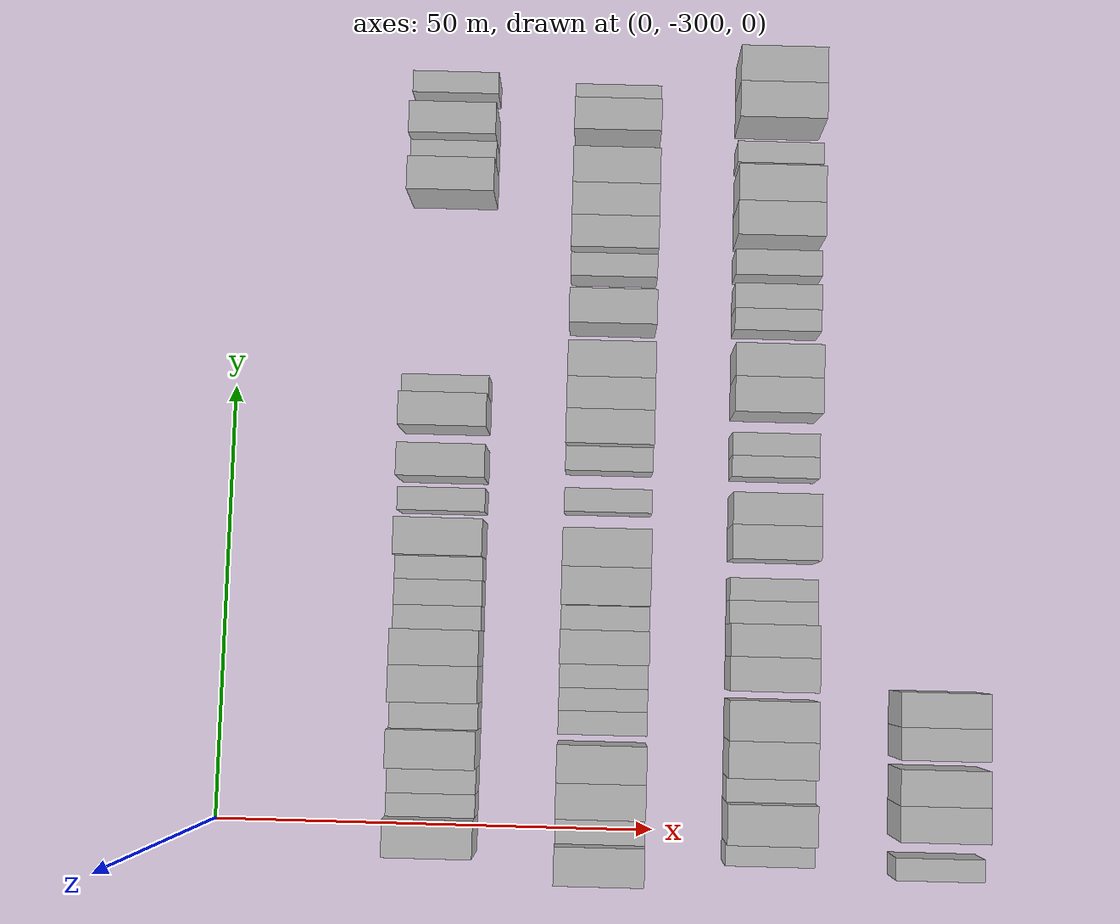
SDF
<sdf version="1.6">
 <world name="default">
  <model name="building_13">
   <static>1</static>
   <pose>25.0000 -300.7905 0 0.000000 0.000000 0.000000</pose>
   <link name="link">
    <pose>0 0 4.50 0 0 0</pose>
    <collision name="collision"><geometry><box><size>10.0000 4.1984 9.0000</size></box></geometry></collision>
    <visual name="visual">
     <cast_shadows>0</cast_shadows>
     <geometry><box><size>10.0000 4.1984 9.0000</size></box></geometry>
     <material>
      <script>
       <uri>model://HANNAS_wall/materials/scripts</uri>
       <uri>model://HANNAS_wall/materials/textures</uri>
       <name>vrc/HANNAS_wall</name>
      </script>
     </material>
    </visual>
   </link>
  </model>
  <model name="building_14">
   <static>1</static>
   <pose>25.0000 -297.3987 0 0.000000 0.000000 0.000000</pose>
   <link name="link">
    <pose>0 0 3.00 0 0 0</pose>
    <collision name="collision"><geometry><box><size>10.0000 2.5852 6.0000</size></box></geometry></collision>
    <visual name="visual">
     <cast_shadows>0</cast_shadows>
     <geometry><box><size>10.0000 2.5852 6.0000</size></box></geometry>
     <material>
      <script>
       <uri>model://HANNAS_wall/materials/scripts</uri>
       <uri>model://HANNAS_wall/materials/textures</uri>
       <name>vrc/HANNAS_wall</name>
      </script>
     </material>
    </visual>
   </link>
  </model>
  <model name="building_15">
   <static>1</static>
   <pose>25.0000 -294.6609 0 0.000000 0.000000 0.000000</pose>
   <link name="link">
    <pose>0 0 3.00 0 0 0</pose>
    <collision name="collision"><geometry><box><size>10.0000 2.8902 6.0000</size></box></geometry></collision>
    <visual name="visual">
     <cast_shadows>0</cast_shadows>
     <geometry><box><size>10.0000 2.8902 6.0000</size></box></geometry>
     <material>
      <script>
       <uri>model://HANNAS_wall/materials/scripts</uri>
       <uri>model://HANNAS_wall/materials/textures</uri>
       <name>vrc/HANNAS_wall</name>
      </script>
     </material>
    </visual>
   </link>
  </model>
  <model name="building_16">
   <static>1</static>
   <pose>25.0000 -291.0888 0 0.000000 0.000000 0.000000</pose>
   <link name="link">
    <pose>0 0 4.50 0 0 0</pose>
    <collision name="collision"><geometry><box><size>10.0000 4.2540 9.0000</size></box></geometry></collision>
    <visual name="visual">
     <cast_shadows>0</cast_shadows>
     <geometry><box><size>10.0000 4.2540 9.0000</size></box></geometry>
     <material>
      <script>
       <uri>model://HANNAS_wall/materials/scripts</uri>
       <uri>model://HANNAS_wall/materials/textures</uri>
       <name>vrc/HANNAS_wall</name>
      </script>
     </material>
    </visual>
   </link>
  </model>
  <model name="building_17">
   <static>1</static>
   <pose>25.0000 -287.4622 0 0.000000 0.000000 0.000000</pose>
   <link name="link">
    <pose>0 0 3.00 0 0 0</pose>
    <collision name="collision"><geometry><box><size>10.0000 2.9994 6.0000</size></box></geometry></collision>
    <visual name="visual">
     <cast_shadows>0</cast_shadows>
     <geometry><box><size>10.0000 2.9994 6.0000</size></box></geometry>
     <material>
      <script>
       <uri>model://HANNAS_wall/materials/scripts</uri>
       <uri>model://HANNAS_wall/materials/textures</uri>
       <name>vrc/HANNAS_wall</name>
      </script>
     </material>
    </visual>
   </link>
  </model>
  <model name="building_18">
   <static>1</static>
   <pose>25.0000 -283.9113 0 0.000000 0.000000 0.000000</pose>
   <link name="link">
    <pose>0 0 4.50 0 0 0</pose>
    <collision name="collision"><geometry><box><size>10.0000 4.1024 9.0000</size></box></geometry></collision>
    <visual name="visual">
     <cast_shadows>0</cast_shadows>
     <geometry><box><size>10.0000 4.1024 9.0000</size></box></geometry>
     <material>
      <script>
       <uri>model://HANNAS_wall/materials/scripts</uri>
       <uri>model://HANNAS_wall/materials/textures</uri>
       <name>vrc/HANNAS_wall</name>
      </script>
     </material>
    </visual>
   </link>
  </model>
  <model name="building_19">
   <static>1</static>
   <pose>25.0000 -279.8644 0 0.000000 0.000000 0.000000</pose>
   <link name="link">
    <pose>0 0 4.50 0 0 0</pose>
    <collision name="collision"><geometry><box><size>10.0000 3.9914 9.0000</size></box></geometry></collision>
    <visual name="visual">
     <cast_shadows>0</cast_shadows>
     <geometry><box><size>10.0000 3.9914 9.0000</size></box></geometry>
     <material>
      <script>
       <uri>model://HANNAS_wall/materials/scripts</uri>
       <uri>model://HANNAS_wall/materials/textures</uri>
       <name>vrc/HANNAS_wall</name>
      </script>
     </material>
    </visual>
   </link>
  </model>
  <model name="building_20">
   <static>1</static>
   <pose>25.0000 -276.5070 0 0.000000 0.000000 0.000000</pose>
   <link name="link">
    <pose>0 0 3.00 0 0 0</pose>
    <collision name="collision"><geometry><box><size>10.0000 2.7232 6.0000</size></box></geometry></collision>
    <visual name="visual">
     <cast_shadows>0</cast_shadows>
     <geometry><box><size>10.0000 2.7232 6.0000</size></box></geometry>
     <material>
      <script>
       <uri>model://HANNAS_wall/materials/scripts</uri>
       <uri>model://HANNAS_wall/materials/textures</uri>
       <name>vrc/HANNAS_wall</name>
      </script>
     </material>
    </visual>
   </link>
  </model>
  <model name="building_21">
   <static>1</static>
   <pose>25.0000 -273.6886 0 0.000000 0.000000 0.000000</pose>
   <link name="link">
    <pose>0 0 3.00 0 0 0</pose>
    <collision name="collision"><geometry><box><size>10.0000 2.9136 6.0000</size></box></geometry></collision>
    <visual name="visual">
     <cast_shadows>0</cast_shadows>
     <geometry><box><size>10.0000 2.9136 6.0000</size></box></geometry>
     <material>
      <script>
       <uri>model://HANNAS_wall/materials/scripts</uri>
       <uri>model://HANNAS_wall/materials/textures</uri>
       <name>vrc/HANNAS_wall</name>
      </script>
     </material>
    </visual>
   </link>
  </model>
  <model name="building_22">
   <static>1</static>
   <pose>25.0000 -270.9212 0 0.000000 0.000000 0.000000</pose>
   <link name="link">
    <pose>0 0 3.00 0 0 0</pose>
    <collision name="collision"><geometry><box><size>10.0000 2.6211 6.0000</size></box></geometry></collision>
    <visual name="visual">
     <cast_shadows>0</cast_shadows>
     <geometry><box><size>10.0000 2.6211 6.0000</size></box></geometry>
     <material>
      <script>
       <uri>model://HANNAS_wall/materials/scripts</uri>
       <uri>model://HANNAS_wall/materials/textures</uri>
       <name>vrc/HANNAS_wall</name>
      </script>
     </material>
    </visual>
   </link>
  </model>
  <model name="building_23">
   <static>1</static>
   <pose>25.0000 -267.5183 0 0.000000 0.000000 0.000000</pose>
   <link name="link">
    <pose>0 0 4.50 0 0 0</pose>
    <collision name="collision"><geometry><box><size>10.0000 4.1848 9.0000</size></box></geometry></collision>
    <visual name="visual">
     <cast_shadows>0</cast_shadows>
     <geometry><box><size>10.0000 4.1848 9.0000</size></box></geometry>
     <material>
      <script>
       <uri>model://HANNAS_wall/materials/scripts</uri>
       <uri>model://HANNAS_wall/materials/textures</uri>
       <name>vrc/HANNAS_wall</name>
      </script>
     </material>
    </visual>
   </link>
  </model>
  <model name="building_24">
   <static>1</static>
   <pose>25.0000 -263.1053 0 0.000000 0.000000 0.000000</pose>
   <link name="link">
    <pose>0 0 3.00 0 0 0</pose>
    <collision name="collision"><geometry><box><size>10.0000 2.6412 6.0000</size></box></geometry></collision>
    <visual name="visual">
     <cast_shadows>0</cast_shadows>
     <geometry><box><size>10.0000 2.6412 6.0000</size></box></geometry>
     <material>
      <script>
       <uri>model://HANNAS_wall/materials/scripts</uri>
       <uri>model://HANNAS_wall/materials/textures</uri>
       <name>vrc/HANNAS_wall</name>
      </script>
     </material>
    </visual>
   </link>
  </model>
  <model name="building_25">
   <static>1</static>
   <pose>25.0000 -258.9148 0 0.000000 0.000000 0.000000</pose>
   <link name="link">
    <pose>0 0 4.50 0 0 0</pose>
    <collision name="collision"><geometry><box><size>10.0000 3.7397 9.0000</size></box></geometry></collision>
    <visual name="visual">
     <cast_shadows>0</cast_shadows>
     <geometry><box><size>10.0000 3.7397 9.0000</size></box></geometry>
     <material>
      <script>
       <uri>model://HANNAS_wall/materials/scripts</uri>
       <uri>model://HANNAS_wall/materials/textures</uri>
       <name>vrc/HANNAS_wall</name>
      </script>
     </material>
    </visual>
   </link>
  </model>
  <model name="building_26">
   <static>1</static>
   <pose>25.0000 -253.1585 0 0.000000 0.000000 0.000000</pose>
   <link name="link">
    <pose>0 0 4.50 0 0 0</pose>
    <collision name="collision"><geometry><box><size>10.0000 3.7730 9.0000</size></box></geometry></collision>
    <visual name="visual">
     <cast_shadows>0</cast_shadows>
     <geometry><box><size>10.0000 3.7730 9.0000</size></box></geometry>
     <material>
      <script>
       <uri>model://HANNAS_wall/materials/scripts</uri>
       <uri>model://HANNAS_wall/materials/textures</uri>
       <name>vrc/HANNAS_wall</name>
      </script>
     </material>
    </visual>
   </link>
  </model>
  <model name="building_27">
   <static>1</static>
   <pose>25.0000 -250.0536 0 0.000000 0.000000 0.000000</pose>
   <link name="link">
    <pose>0 0 3.00 0 0 0</pose>
    <collision name="collision"><geometry><box><size>10.0000 2.4368 6.0000</size></box></geometry></collision>
    <visual name="visual">
     <cast_shadows>0</cast_shadows>
     <geometry><box><size>10.0000 2.4368 6.0000</size></box></geometry>
     <material>
      <script>
       <uri>model://HANNAS_wall/materials/scripts</uri>
       <uri>model://HANNAS_wall/materials/textures</uri>
       <name>vrc/HANNAS_wall</name>
      </script>
     </material>
    </visual>
   </link>
  </model>
  <model name="building_28">
   <static>1</static>
   <pose>25.0000 -226.0626 0 0.000000 0.000000 0.000000</pose>
   <link name="link">
    <pose>0 0 4.50 0 0 0</pose>
    <collision name="collision"><geometry><box><size>10.0000 3.8484 9.0000</size></box></geometry></collision>
    <visual name="visual">
     <cast_shadows>0</cast_shadows>
     <geometry><box><size>10.0000 3.8484 9.0000</size></box></geometry>
     <material>
      <script>
       <uri>model://HANNAS_wall/materials/scripts</uri>
       <uri>model://HANNAS_wall/materials/textures</uri>
       <name>vrc/HANNAS_wall</name>
      </script>
     </material>
    </visual>
   </link>
  </model>
  <model name="building_29">
   <static>1</static>
   <pose>25.0000 -222.7465 0 0.000000 0.000000 0.000000</pose>
   <link name="link">
    <pose>0 0 3.00 0 0 0</pose>
    <collision name="collision"><geometry><box><size>10.0000 2.7838 6.0000</size></box></geometry></collision>
    <visual name="visual">
     <cast_shadows>0</cast_shadows>
     <geometry><box><size>10.0000 2.7838 6.0000</size></box></geometry>
     <material>
      <script>
       <uri>model://HANNAS_wall/materials/scripts</uri>
       <uri>model://HANNAS_wall/materials/textures</uri>
       <name>vrc/HANNAS_wall</name>
      </script>
     </material>
    </visual>
   </link>
  </model>
  <model name="building_30">
   <static>1</static>
   <pose>25.0000 -219.5177 0 0.000000 0.000000 0.000000</pose>
   <link name="link">
    <pose>0 0 4.50 0 0 0</pose>
    <collision name="collision"><geometry><box><size>10.0000 3.6739 9.0000</size></box></geometry></collision>
    <visual name="visual">
     <cast_shadows>0</cast_shadows>
     <geometry><box><size>10.0000 3.6739 9.0000</size></box></geometry>
     <material>
      <script>
       <uri>model://HANNAS_wall/materials/scripts</uri>
       <uri>model://HANNAS_wall/materials/textures</uri>
       <name>vrc/HANNAS_wall</name>
      </script>
     </material>
    </visual>
   </link>
  </model>
  <model name="building_31">
   <static>1</static>
   <pose>25.0000 -214.4132 0 0.000000 0.000000 0.000000</pose>
   <link name="link">
    <pose>0 0 3.00 0 0 0</pose>
    <collision name="collision"><geometry><box><size>10.0000 2.5351 6.0000</size></box></geometry></collision>
    <visual name="visual">
     <cast_shadows>0</cast_shadows>
     <geometry><box><size>10.0000 2.5351 6.0000</size></box></geometry>
     <material>
      <script>
       <uri>model://HANNAS_wall/materials/scripts</uri>
       <uri>model://HANNAS_wall/materials/textures</uri>
       <name>vrc/HANNAS_wall</name>
      </script>
     </material>
    </visual>
   </link>
  </model>
  <model name="building_181">
   <static>1</static>
   <pose>44.0000 -303.3270 0 0.000000 0.000000 0.000000</pose>
   <link name="link">
    <pose>0 0 4.50 0 0 0</pose>
    <collision name="collision"><geometry><box><size>10.0000 4.2376 9.0000</size></box></geometry></collision>
    <visual name="visual">
     <cast_shadows>0</cast_shadows>
     <geometry><box><size>10.0000 4.2376 9.0000</size></box></geometry>
     <material>
      <script>
       <uri>model://HANNAS_wall/materials/scripts</uri>
       <uri>model://HANNAS_wall/materials/textures</uri>
       <name>vrc/HANNAS_wall</name>
      </script>
     </material>
    </visual>
   </link>
  </model>
  <model name="building_182">
   <static>1</static>
   <pose>44.0000 -299.7260 0 0.000000 0.000000 0.000000</pose>
   <link name="link">
    <pose>0 0 3.00 0 0 0</pose>
    <collision name="collision"><geometry><box><size>10.0000 2.9644 6.0000</size></box></geometry></collision>
    <visual name="visual">
     <cast_shadows>0</cast_shadows>
     <geometry><box><size>10.0000 2.9644 6.0000</size></box></geometry>
     <material>
      <script>
       <uri>model://HANNAS_wall/materials/scripts</uri>
       <uri>model://HANNAS_wall/materials/textures</uri>
       <name>vrc/HANNAS_wall</name>
      </script>
     </material>
    </visual>
   </link>
  </model>
  <model name="building_183">
   <static>1</static>
   <pose>44.0000 -296.2830 0 0.000000 0.000000 0.000000</pose>
   <link name="link">
    <pose>0 0 4.50 0 0 0</pose>
    <collision name="collision"><geometry><box><size>10.0000 3.9217 9.0000</size></box></geometry></collision>
    <visual name="visual">
     <cast_shadows>0</cast_shadows>
     <geometry><box><size>10.0000 3.9217 9.0000</size></box></geometry>
     <material>
      <script>
       <uri>model://HANNAS_wall/materials/scripts</uri>
       <uri>model://HANNAS_wall/materials/textures</uri>
       <name>vrc/HANNAS_wall</name>
      </script>
     </material>
    </visual>
   </link>
  </model>
  <model name="building_184">
   <static>1</static>
   <pose>44.0000 -292.2314 0 0.000000 0.000000 0.000000</pose>
   <link name="link">
    <pose>0 0 4.50 0 0 0</pose>
    <collision name="collision"><geometry><box><size>10.0000 4.1815 9.0000</size></box></geometry></collision>
    <visual name="visual">
     <cast_shadows>0</cast_shadows>
     <geometry><box><size>10.0000 4.1815 9.0000</size></box></geometry>
     <material>
      <script>
       <uri>model://HANNAS_wall/materials/scripts</uri>
       <uri>model://HANNAS_wall/materials/textures</uri>
       <name>vrc/HANNAS_wall</name>
      </script>
     </material>
    </visual>
   </link>
  </model>
  <model name="building_185">
   <static>1</static>
   <pose>44.0000 -287.8193 0 0.000000 0.000000 0.000000</pose>
   <link name="link">
    <pose>0 0 3.00 0 0 0</pose>
    <collision name="collision"><geometry><box><size>10.0000 2.6428 6.0000</size></box></geometry></collision>
    <visual name="visual">
     <cast_shadows>0</cast_shadows>
     <geometry><box><size>10.0000 2.6428 6.0000</size></box></geometry>
     <material>
      <script>
       <uri>model://HANNAS_wall/materials/scripts</uri>
       <uri>model://HANNAS_wall/materials/textures</uri>
       <name>vrc/HANNAS_wall</name>
      </script>
     </material>
    </visual>
   </link>
  </model>
  <model name="building_186">
   <static>1</static>
   <pose>44.0000 -285.2266 0 0.000000 0.000000 0.000000</pose>
   <link name="link">
    <pose>0 0 3.00 0 0 0</pose>
    <collision name="collision"><geometry><box><size>10.0000 2.5427 6.0000</size></box></geometry></collision>
    <visual name="visual">
     <cast_shadows>0</cast_shadows>
     <geometry><box><size>10.0000 2.5427 6.0000</size></box></geometry>
     <material>
      <script>
       <uri>model://HANNAS_wall/materials/scripts</uri>
       <uri>model://HANNAS_wall/materials/textures</uri>
       <name>vrc/HANNAS_wall</name>
      </script>
     </material>
    </visual>
   </link>
  </model>
  <model name="building_187">
   <static>1</static>
   <pose>44.0000 -282.6139 0 0.000000 0.000000 0.000000</pose>
   <link name="link">
    <pose>0 0 3.00 0 0 0</pose>
    <collision name="collision"><geometry><box><size>10.0000 2.6825 6.0000</size></box></geometry></collision>
    <visual name="visual">
     <cast_shadows>0</cast_shadows>
     <geometry><box><size>10.0000 2.6825 6.0000</size></box></geometry>
     <material>
      <script>
       <uri>model://HANNAS_wall/materials/scripts</uri>
       <uri>model://HANNAS_wall/materials/textures</uri>
       <name>vrc/HANNAS_wall</name>
      </script>
     </material>
    </visual>
   </link>
  </model>
  <model name="building_188">
   <static>1</static>
   <pose>44.0000 -279.3797 0 0.000000 0.000000 0.000000</pose>
   <link name="link">
    <pose>0 0 4.50 0 0 0</pose>
    <collision name="collision"><geometry><box><size>10.0000 3.7860 9.0000</size></box></geometry></collision>
    <visual name="visual">
     <cast_shadows>0</cast_shadows>
     <geometry><box><size>10.0000 3.7860 9.0000</size></box></geometry>
     <material>
      <script>
       <uri>model://HANNAS_wall/materials/scripts</uri>
       <uri>model://HANNAS_wall/materials/textures</uri>
       <name>vrc/HANNAS_wall</name>
      </script>
     </material>
    </visual>
   </link>
  </model>
  <model name="building_189">
   <static>1</static>
   <pose>44.0000 -276.0984 0 0.000000 0.000000 0.000000</pose>
   <link name="link">
    <pose>0 0 3.00 0 0 0</pose>
    <collision name="collision"><geometry><box><size>10.0000 2.7766 6.0000</size></box></geometry></collision>
    <visual name="visual">
     <cast_shadows>0</cast_shadows>
     <geometry><box><size>10.0000 2.7766 6.0000</size></box></geometry>
     <material>
      <script>
       <uri>model://HANNAS_wall/materials/scripts</uri>
       <uri>model://HANNAS_wall/materials/textures</uri>
       <name>vrc/HANNAS_wall</name>
      </script>
     </material>
    </visual>
   </link>
  </model>
  <model name="building_190">
   <static>1</static>
   <pose>44.0000 -272.5750 0 0.000000 0.000000 0.000000</pose>
   <link name="link">
    <pose>0 0 4.50 0 0 0</pose>
    <collision name="collision"><geometry><box><size>10.0000 4.2703 9.0000</size></box></geometry></collision>
    <visual name="visual">
     <cast_shadows>0</cast_shadows>
     <geometry><box><size>10.0000 4.2703 9.0000</size></box></geometry>
     <material>
      <script>
       <uri>model://HANNAS_wall/materials/scripts</uri>
       <uri>model://HANNAS_wall/materials/textures</uri>
       <name>vrc/HANNAS_wall</name>
      </script>
     </material>
    </visual>
   </link>
  </model>
  <model name="building_191">
   <static>1</static>
   <pose>44.0000 -268.2742 0 0.000000 0.000000 0.000000</pose>
   <link name="link">
    <pose>0 0 4.50 0 0 0</pose>
    <collision name="collision"><geometry><box><size>10.0000 4.3313 9.0000</size></box></geometry></collision>
    <visual name="visual">
     <cast_shadows>0</cast_shadows>
     <geometry><box><size>10.0000 4.3313 9.0000</size></box></geometry>
     <material>
      <script>
       <uri>model://HANNAS_wall/materials/scripts</uri>
       <uri>model://HANNAS_wall/materials/textures</uri>
       <name>vrc/HANNAS_wall</name>
      </script>
     </material>
    </visual>
   </link>
  </model>
  <model name="building_192">
   <static>1</static>
   <pose>44.0000 -262.7635 0 0.000000 0.000000 0.000000</pose>
   <link name="link">
    <pose>0 0 3.00 0 0 0</pose>
    <collision name="collision"><geometry><box><size>10.0000 2.6901 6.0000</size></box></geometry></collision>
    <visual name="visual">
     <cast_shadows>0</cast_shadows>
     <geometry><box><size>10.0000 2.6901 6.0000</size></box></geometry>
     <material>
      <script>
       <uri>model://HANNAS_wall/materials/scripts</uri>
       <uri>model://HANNAS_wall/materials/textures</uri>
       <name>vrc/HANNAS_wall</name>
      </script>
     </material>
    </visual>
   </link>
  </model>
  <model name="building_193">
   <static>1</static>
   <pose>44.0000 -258.0133 0 0.000000 0.000000 0.000000</pose>
   <link name="link">
    <pose>0 0 3.00 0 0 0</pose>
    <collision name="collision"><geometry><box><size>10.0000 2.8103 6.0000</size></box></geometry></collision>
    <visual name="visual">
     <cast_shadows>0</cast_shadows>
     <geometry><box><size>10.0000 2.8103 6.0000</size></box></geometry>
     <material>
      <script>
       <uri>model://HANNAS_wall/materials/scripts</uri>
       <uri>model://HANNAS_wall/materials/textures</uri>
       <name>vrc/HANNAS_wall</name>
      </script>
     </material>
    </visual>
   </link>
  </model>
  <model name="building_194">
   <static>1</static>
   <pose>44.0000 -254.6480 0 0.000000 0.000000 0.000000</pose>
   <link name="link">
    <pose>0 0 4.50 0 0 0</pose>
    <collision name="collision"><geometry><box><size>10.0000 3.9203 9.0000</size></box></geometry></collision>
    <visual name="visual">
     <cast_shadows>0</cast_shadows>
     <geometry><box><size>10.0000 3.9203 9.0000</size></box></geometry>
     <material>
      <script>
       <uri>model://HANNAS_wall/materials/scripts</uri>
       <uri>model://HANNAS_wall/materials/textures</uri>
       <name>vrc/HANNAS_wall</name>
      </script>
     </material>
    </visual>
   </link>
  </model>
  <model name="building_195">
   <static>1</static>
   <pose>44.0000 -250.8637 0 0.000000 0.000000 0.000000</pose>
   <link name="link">
    <pose>0 0 4.50 0 0 0</pose>
    <collision name="collision"><geometry><box><size>10.0000 3.6484 9.0000</size></box></geometry></collision>
    <visual name="visual">
     <cast_shadows>0</cast_shadows>
     <geometry><box><size>10.0000 3.6484 9.0000</size></box></geometry>
     <material>
      <script>
       <uri>model://HANNAS_wall/materials/scripts</uri>
       <uri>model://HANNAS_wall/materials/textures</uri>
       <name>vrc/HANNAS_wall</name>
      </script>
     </material>
    </visual>
   </link>
  </model>
  <model name="building_196">
   <static>1</static>
   <pose>44.0000 -246.9723 0 0.000000 0.000000 0.000000</pose>
   <link name="link">
    <pose>0 0 4.50 0 0 0</pose>
    <collision name="collision"><geometry><box><size>10.0000 4.1344 9.0000</size></box></geometry></collision>
    <visual name="visual">
     <cast_shadows>0</cast_shadows>
     <geometry><box><size>10.0000 4.1344 9.0000</size></box></geometry>
     <material>
      <script>
       <uri>model://HANNAS_wall/materials/scripts</uri>
       <uri>model://HANNAS_wall/materials/textures</uri>
       <name>vrc/HANNAS_wall</name>
      </script>
     </material>
    </visual>
   </link>
  </model>
  <model name="building_197">
   <static>1</static>
   <pose>44.0000 -240.9035 0 0.000000 0.000000 0.000000</pose>
   <link name="link">
    <pose>0 0 4.50 0 0 0</pose>
    <collision name="collision"><geometry><box><size>10.0000 4.0032 9.0000</size></box></geometry></collision>
    <visual name="visual">
     <cast_shadows>0</cast_shadows>
     <geometry><box><size>10.0000 4.0032 9.0000</size></box></geometry>
     <material>
      <script>
       <uri>model://HANNAS_wall/materials/scripts</uri>
       <uri>model://HANNAS_wall/materials/textures</uri>
       <name>vrc/HANNAS_wall</name>
      </script>
     </material>
    </visual>
   </link>
  </model>
  <model name="building_198">
   <static>1</static>
   <pose>44.0000 -235.5371 0 0.000000 0.000000 0.000000</pose>
   <link name="link">
    <pose>0 0 3.00 0 0 0</pose>
    <collision name="collision"><geometry><box><size>10.0000 2.7296 6.0000</size></box></geometry></collision>
    <visual name="visual">
     <cast_shadows>0</cast_shadows>
     <geometry><box><size>10.0000 2.7296 6.0000</size></box></geometry>
     <material>
      <script>
       <uri>model://HANNAS_wall/materials/scripts</uri>
       <uri>model://HANNAS_wall/materials/textures</uri>
       <name>vrc/HANNAS_wall</name>
      </script>
     </material>
    </visual>
   </link>
  </model>
  <model name="building_199">
   <static>1</static>
   <pose>44.0000 -232.3139 0 0.000000 0.000000 0.000000</pose>
   <link name="link">
    <pose>0 0 4.50 0 0 0</pose>
    <collision name="collision"><geometry><box><size>10.0000 3.7168 9.0000</size></box></geometry></collision>
    <visual name="visual">
     <cast_shadows>0</cast_shadows>
     <geometry><box><size>10.0000 3.7168 9.0000</size></box></geometry>
     <material>
      <script>
       <uri>model://HANNAS_wall/materials/scripts</uri>
       <uri>model://HANNAS_wall/materials/textures</uri>
       <name>vrc/HANNAS_wall</name>
      </script>
     </material>
    </visual>
   </link>
  </model>
  <model name="building_200">
   <static>1</static>
   <pose>44.0000 -228.5671 0 0.000000 0.000000 0.000000</pose>
   <link name="link">
    <pose>0 0 4.50 0 0 0</pose>
    <collision name="collision"><geometry><box><size>10.0000 3.7767 9.0000</size></box></geometry></collision>
    <visual name="visual">
     <cast_shadows>0</cast_shadows>
     <geometry><box><size>10.0000 3.7767 9.0000</size></box></geometry>
     <material>
      <script>
       <uri>model://HANNAS_wall/materials/scripts</uri>
       <uri>model://HANNAS_wall/materials/textures</uri>
       <name>vrc/HANNAS_wall</name>
      </script>
     </material>
    </visual>
   </link>
  </model>
  <model name="building_201">
   <static>1</static>
   <pose>44.0000 -224.5776 0 0.000000 0.000000 0.000000</pose>
   <link name="link">
    <pose>0 0 4.50 0 0 0</pose>
    <collision name="collision"><geometry><box><size>10.0000 4.2024 9.0000</size></box></geometry></collision>
    <visual name="visual">
     <cast_shadows>0</cast_shadows>
     <geometry><box><size>10.0000 4.2024 9.0000</size></box></geometry>
     <material>
      <script>
       <uri>model://HANNAS_wall/materials/scripts</uri>
       <uri>model://HANNAS_wall/materials/textures</uri>
       <name>vrc/HANNAS_wall</name>
      </script>
     </material>
    </visual>
   </link>
  </model>
  <model name="building_202">
   <static>1</static>
   <pose>44.0000 -218.6069 0 0.000000 0.000000 0.000000</pose>
   <link name="link">
    <pose>0 0 4.50 0 0 0</pose>
    <collision name="collision"><geometry><box><size>10.0000 3.7391 9.0000</size></box></geometry></collision>
    <visual name="visual">
     <cast_shadows>0</cast_shadows>
     <geometry><box><size>10.0000 3.7391 9.0000</size></box></geometry>
     <material>
      <script>
       <uri>model://HANNAS_wall/materials/scripts</uri>
       <uri>model://HANNAS_wall/materials/textures</uri>
       <name>vrc/HANNAS_wall</name>
      </script>
     </material>
    </visual>
   </link>
  </model>
  <model name="building_203">
   <static>1</static>
   <pose>44.0000 -215.4786 0 0.000000 0.000000 0.000000</pose>
   <link name="link">
    <pose>0 0 3.00 0 0 0</pose>
    <collision name="collision"><geometry><box><size>10.0000 2.5176 6.0000</size></box></geometry></collision>
    <visual name="visual">
     <cast_shadows>0</cast_shadows>
     <geometry><box><size>10.0000 2.5176 6.0000</size></box></geometry>
     <material>
      <script>
       <uri>model://HANNAS_wall/materials/scripts</uri>
       <uri>model://HANNAS_wall/materials/textures</uri>
       <name>vrc/HANNAS_wall</name>
      </script>
     </material>
    </visual>
   </link>
  </model>
  <model name="building_358">
   <static>1</static>
   <pose>63.0000 -301.8535 0 0.000000 0.000000 0.000000</pose>
   <link name="link">
    <pose>0 0 3.00 0 0 0</pose>
    <collision name="collision"><geometry><box><size>10.0000 2.5547 6.0000</size></box></geometry></collision>
    <visual name="visual">
     <cast_shadows>0</cast_shadows>
     <geometry><box><size>10.0000 2.5547 6.0000</size></box></geometry>
     <material>
      <script>
       <uri>model://HANNAS_wall/materials/scripts</uri>
       <uri>model://HANNAS_wall/materials/textures</uri>
       <name>vrc/HANNAS_wall</name>
      </script>
     </material>
    </visual>
   </link>
  </model>
  <model name="building_359">
   <static>1</static>
   <pose>63.0000 -298.3447 0 0.000000 0.000000 0.000000</pose>
   <link name="link">
    <pose>0 0 4.50 0 0 0</pose>
    <collision name="collision"><geometry><box><size>10.0000 4.4631 9.0000</size></box></geometry></collision>
    <visual name="visual">
     <cast_shadows>0</cast_shadows>
     <geometry><box><size>10.0000 4.4631 9.0000</size></box></geometry>
     <material>
      <script>
       <uri>model://HANNAS_wall/materials/scripts</uri>
       <uri>model://HANNAS_wall/materials/textures</uri>
       <name>vrc/HANNAS_wall</name>
      </script>
     </material>
    </visual>
   </link>
  </model>
  <model name="building_360">
   <static>1</static>
   <pose>63.0000 -294.7150 0 0.000000 0.000000 0.000000</pose>
   <link name="link">
    <pose>0 0 3.00 0 0 0</pose>
    <collision name="collision"><geometry><box><size>10.0000 2.7962 6.0000</size></box></geometry></collision>
    <visual name="visual">
     <cast_shadows>0</cast_shadows>
     <geometry><box><size>10.0000 2.7962 6.0000</size></box></geometry>
     <material>
      <script>
       <uri>model://HANNAS_wall/materials/scripts</uri>
       <uri>model://HANNAS_wall/materials/textures</uri>
       <name>vrc/HANNAS_wall</name>
      </script>
     </material>
    </visual>
   </link>
  </model>
  <model name="building_361">
   <static>1</static>
   <pose>63.0000 -291.2730 0 0.000000 0.000000 0.000000</pose>
   <link name="link">
    <pose>0 0 4.50 0 0 0</pose>
    <collision name="collision"><geometry><box><size>10.0000 4.0878 9.0000</size></box></geometry></collision>
    <visual name="visual">
     <cast_shadows>0</cast_shadows>
     <geometry><box><size>10.0000 4.0878 9.0000</size></box></geometry>
     <material>
      <script>
       <uri>model://HANNAS_wall/materials/scripts</uri>
       <uri>model://HANNAS_wall/materials/textures</uri>
       <name>vrc/HANNAS_wall</name>
      </script>
     </material>
    </visual>
   </link>
  </model>
  <model name="building_362">
   <static>1</static>
   <pose>63.0000 -286.9962 0 0.000000 0.000000 0.000000</pose>
   <link name="link">
    <pose>0 0 4.50 0 0 0</pose>
    <collision name="collision"><geometry><box><size>10.0000 4.4658 9.0000</size></box></geometry></collision>
    <visual name="visual">
     <cast_shadows>0</cast_shadows>
     <geometry><box><size>10.0000 4.4658 9.0000</size></box></geometry>
     <material>
      <script>
       <uri>model://HANNAS_wall/materials/scripts</uri>
       <uri>model://HANNAS_wall/materials/textures</uri>
       <name>vrc/HANNAS_wall</name>
      </script>
     </material>
    </visual>
   </link>
  </model>
  <model name="building_363">
   <static>1</static>
   <pose>63.0000 -281.8577 0 0.000000 0.000000 0.000000</pose>
   <link name="link">
    <pose>0 0 4.50 0 0 0</pose>
    <collision name="collision"><geometry><box><size>10.0000 3.8113 9.0000</size></box></geometry></collision>
    <visual name="visual">
     <cast_shadows>0</cast_shadows>
     <geometry><box><size>10.0000 3.8113 9.0000</size></box></geometry>
     <material>
      <script>
       <uri>model://HANNAS_wall/materials/scripts</uri>
       <uri>model://HANNAS_wall/materials/textures</uri>
       <name>vrc/HANNAS_wall</name>
      </script>
     </material>
    </visual>
   </link>
  </model>
  <model name="building_364">
   <static>1</static>
   <pose>63.0000 -278.1359 0 0.000000 0.000000 0.000000</pose>
   <link name="link">
    <pose>0 0 4.50 0 0 0</pose>
    <collision name="collision"><geometry><box><size>10.0000 3.6322 9.0000</size></box></geometry></collision>
    <visual name="visual">
     <cast_shadows>0</cast_shadows>
     <geometry><box><size>10.0000 3.6322 9.0000</size></box></geometry>
     <material>
      <script>
       <uri>model://HANNAS_wall/materials/scripts</uri>
       <uri>model://HANNAS_wall/materials/textures</uri>
       <name>vrc/HANNAS_wall</name>
      </script>
     </material>
    </visual>
   </link>
  </model>
  <model name="building_365">
   <static>1</static>
   <pose>63.0000 -274.9928 0 0.000000 0.000000 0.000000</pose>
   <link name="link">
    <pose>0 0 3.00 0 0 0</pose>
    <collision name="collision"><geometry><box><size>10.0000 2.6540 6.0000</size></box></geometry></collision>
    <visual name="visual">
     <cast_shadows>0</cast_shadows>
     <geometry><box><size>10.0000 2.6540 6.0000</size></box></geometry>
     <material>
      <script>
       <uri>model://HANNAS_wall/materials/scripts</uri>
       <uri>model://HANNAS_wall/materials/textures</uri>
       <name>vrc/HANNAS_wall</name>
      </script>
     </material>
    </visual>
   </link>
  </model>
  <model name="building_366">
   <static>1</static>
   <pose>63.0000 -272.3990 0 0.000000 0.000000 0.000000</pose>
   <link name="link">
    <pose>0 0 3.00 0 0 0</pose>
    <collision name="collision"><geometry><box><size>10.0000 2.5335 6.0000</size></box></geometry></collision>
    <visual name="visual">
     <cast_shadows>0</cast_shadows>
     <geometry><box><size>10.0000 2.5335 6.0000</size></box></geometry>
     <material>
      <script>
       <uri>model://HANNAS_wall/materials/scripts</uri>
       <uri>model://HANNAS_wall/materials/textures</uri>
       <name>vrc/HANNAS_wall</name>
      </script>
     </material>
    </visual>
   </link>
  </model>
  <model name="building_367">
   <static>1</static>
   <pose>63.0000 -267.2105 0 0.000000 0.000000 0.000000</pose>
   <link name="link">
    <pose>0 0 4.50 0 0 0</pose>
    <collision name="collision"><geometry><box><size>10.0000 3.8435 9.0000</size></box></geometry></collision>
    <visual name="visual">
     <cast_shadows>0</cast_shadows>
     <geometry><box><size>10.0000 3.8435 9.0000</size></box></geometry>
     <material>
      <script>
       <uri>model://HANNAS_wall/materials/scripts</uri>
       <uri>model://HANNAS_wall/materials/textures</uri>
       <name>vrc/HANNAS_wall</name>
      </script>
     </material>
    </visual>
   </link>
  </model>
  <model name="building_368">
   <static>1</static>
   <pose>63.0000 -263.4780 0 0.000000 0.000000 0.000000</pose>
   <link name="link">
    <pose>0 0 4.50 0 0 0</pose>
    <collision name="collision"><geometry><box><size>10.0000 3.6215 9.0000</size></box></geometry></collision>
    <visual name="visual">
     <cast_shadows>0</cast_shadows>
     <geometry><box><size>10.0000 3.6215 9.0000</size></box></geometry>
     <material>
      <script>
       <uri>model://HANNAS_wall/materials/scripts</uri>
       <uri>model://HANNAS_wall/materials/textures</uri>
       <name>vrc/HANNAS_wall</name>
      </script>
     </material>
    </visual>
   </link>
  </model>
  <model name="building_369">
   <static>1</static>
   <pose>63.0000 -258.4417 0 0.000000 0.000000 0.000000</pose>
   <link name="link">
    <pose>0 0 3.00 0 0 0</pose>
    <collision name="collision"><geometry><box><size>10.0000 2.4513 6.0000</size></box></geometry></collision>
    <visual name="visual">
     <cast_shadows>0</cast_shadows>
     <geometry><box><size>10.0000 2.4513 6.0000</size></box></geometry>
     <material>
      <script>
       <uri>model://HANNAS_wall/materials/scripts</uri>
       <uri>model://HANNAS_wall/materials/textures</uri>
       <name>vrc/HANNAS_wall</name>
      </script>
     </material>
    </visual>
   </link>
  </model>
  <model name="building_370">
   <static>1</static>
   <pose>63.0000 -255.8940 0 0.000000 0.000000 0.000000</pose>
   <link name="link">
    <pose>0 0 3.00 0 0 0</pose>
    <collision name="collision"><geometry><box><size>10.0000 2.6442 6.0000</size></box></geometry></collision>
    <visual name="visual">
     <cast_shadows>0</cast_shadows>
     <geometry><box><size>10.0000 2.6442 6.0000</size></box></geometry>
     <material>
      <script>
       <uri>model://HANNAS_wall/materials/scripts</uri>
       <uri>model://HANNAS_wall/materials/textures</uri>
       <name>vrc/HANNAS_wall</name>
      </script>
     </material>
    </visual>
   </link>
  </model>
  <model name="building_371">
   <static>1</static>
   <pose>63.0000 -250.5494 0 0.000000 0.000000 0.000000</pose>
   <link name="link">
    <pose>0 0 4.50 0 0 0</pose>
    <collision name="collision"><geometry><box><size>10.0000 4.0449 9.0000</size></box></geometry></collision>
    <visual name="visual">
     <cast_shadows>0</cast_shadows>
     <geometry><box><size>10.0000 4.0449 9.0000</size></box></geometry>
     <material>
      <script>
       <uri>model://HANNAS_wall/materials/scripts</uri>
       <uri>model://HANNAS_wall/materials/textures</uri>
       <name>vrc/HANNAS_wall</name>
      </script>
     </material>
    </visual>
   </link>
  </model>
  <model name="building_372">
   <static>1</static>
   <pose>63.0000 -246.6254 0 0.000000 0.000000 0.000000</pose>
   <link name="link">
    <pose>0 0 4.50 0 0 0</pose>
    <collision name="collision"><geometry><box><size>10.0000 3.8032 9.0000</size></box></geometry></collision>
    <visual name="visual">
     <cast_shadows>0</cast_shadows>
     <geometry><box><size>10.0000 3.8032 9.0000</size></box></geometry>
     <material>
      <script>
       <uri>model://HANNAS_wall/materials/scripts</uri>
       <uri>model://HANNAS_wall/materials/textures</uri>
       <name>vrc/HANNAS_wall</name>
      </script>
     </material>
    </visual>
   </link>
  </model>
  <model name="building_373">
   <static>1</static>
   <pose>63.0000 -241.4439 0 0.000000 0.000000 0.000000</pose>
   <link name="link">
    <pose>0 0 3.00 0 0 0</pose>
    <collision name="collision"><geometry><box><size>10.0000 2.5596 6.0000</size></box></geometry></collision>
    <visual name="visual">
     <cast_shadows>0</cast_shadows>
     <geometry><box><size>10.0000 2.5596 6.0000</size></box></geometry>
     <material>
      <script>
       <uri>model://HANNAS_wall/materials/scripts</uri>
       <uri>model://HANNAS_wall/materials/textures</uri>
       <name>vrc/HANNAS_wall</name>
      </script>
     </material>
    </visual>
   </link>
  </model>
  <model name="building_374">
   <static>1</static>
   <pose>63.0000 -238.7126 0 0.000000 0.000000 0.000000</pose>
   <link name="link">
    <pose>0 0 3.00 0 0 0</pose>
    <collision name="collision"><geometry><box><size>10.0000 2.9031 6.0000</size></box></geometry></collision>
    <visual name="visual">
     <cast_shadows>0</cast_shadows>
     <geometry><box><size>10.0000 2.9031 6.0000</size></box></geometry>
     <material>
      <script>
       <uri>model://HANNAS_wall/materials/scripts</uri>
       <uri>model://HANNAS_wall/materials/textures</uri>
       <name>vrc/HANNAS_wall</name>
      </script>
     </material>
    </visual>
   </link>
  </model>
  <model name="building_375">
   <static>1</static>
   <pose>63.0000 -234.7707 0 0.000000 0.000000 0.000000</pose>
   <link name="link">
    <pose>0 0 3.00 0 0 0</pose>
    <collision name="collision"><geometry><box><size>10.0000 2.9807 6.0000</size></box></geometry></collision>
    <visual name="visual">
     <cast_shadows>0</cast_shadows>
     <geometry><box><size>10.0000 2.9807 6.0000</size></box></geometry>
     <material>
      <script>
       <uri>model://HANNAS_wall/materials/scripts</uri>
       <uri>model://HANNAS_wall/materials/textures</uri>
       <name>vrc/HANNAS_wall</name>
      </script>
     </material>
    </visual>
   </link>
  </model>
  <model name="building_376">
   <static>1</static>
   <pose>63.0000 -230.2922 0 0.000000 0.000000 0.000000</pose>
   <link name="link">
    <pose>0 0 4.50 0 0 0</pose>
    <collision name="collision"><geometry><box><size>10.0000 3.9763 9.0000</size></box></geometry></collision>
    <visual name="visual">
     <cast_shadows>0</cast_shadows>
     <geometry><box><size>10.0000 3.9763 9.0000</size></box></geometry>
     <material>
      <script>
       <uri>model://HANNAS_wall/materials/scripts</uri>
       <uri>model://HANNAS_wall/materials/textures</uri>
       <name>vrc/HANNAS_wall</name>
      </script>
     </material>
    </visual>
   </link>
  </model>
  <model name="building_377">
   <static>1</static>
   <pose>63.0000 -226.1805 0 0.000000 0.000000 0.000000</pose>
   <link name="link">
    <pose>0 0 4.50 0 0 0</pose>
    <collision name="collision"><geometry><box><size>10.0000 4.2471 9.0000</size></box></geometry></collision>
    <visual name="visual">
     <cast_shadows>0</cast_shadows>
     <geometry><box><size>10.0000 4.2471 9.0000</size></box></geometry>
     <material>
      <script>
       <uri>model://HANNAS_wall/materials/scripts</uri>
       <uri>model://HANNAS_wall/materials/textures</uri>
       <name>vrc/HANNAS_wall</name>
      </script>
     </material>
    </visual>
   </link>
  </model>
  <model name="building_378">
   <static>1</static>
   <pose>63.0000 -221.7925 0 0.000000 0.000000 0.000000</pose>
   <link name="link">
    <pose>0 0 3.00 0 0 0</pose>
    <collision name="collision"><geometry><box><size>10.0000 2.5290 6.0000</size></box></geometry></collision>
    <visual name="visual">
     <cast_shadows>0</cast_shadows>
     <geometry><box><size>10.0000 2.5290 6.0000</size></box></geometry>
     <material>
      <script>
       <uri>model://HANNAS_wall/materials/scripts</uri>
       <uri>model://HANNAS_wall/materials/textures</uri>
       <name>vrc/HANNAS_wall</name>
      </script>
     </material>
    </visual>
   </link>
  </model>
  <model name="building_379">
   <static>1</static>
   <pose>63.0000 -216.4206 0 0.000000 0.000000 0.000000</pose>
   <link name="link">
    <pose>0 0 4.50 0 0 0</pose>
    <collision name="collision"><geometry><box><size>10.0000 4.2148 9.0000</size></box></geometry></collision>
    <visual name="visual">
     <cast_shadows>0</cast_shadows>
     <geometry><box><size>10.0000 4.2148 9.0000</size></box></geometry>
     <material>
      <script>
       <uri>model://HANNAS_wall/materials/scripts</uri>
       <uri>model://HANNAS_wall/materials/textures</uri>
       <name>vrc/HANNAS_wall</name>
      </script>
     </material>
    </visual>
   </link>
  </model>
  <model name="building_380">
   <static>1</static>
   <pose>63.0000 -212.2092 0 0.000000 0.000000 0.000000</pose>
   <link name="link">
    <pose>0 0 4.50 0 0 0</pose>
    <collision name="collision"><geometry><box><size>10.0000 4.2080 9.0000</size></box></geometry></collision>
    <visual name="visual">
     <cast_shadows>0</cast_shadows>
     <geometry><box><size>10.0000 4.2080 9.0000</size></box></geometry>
     <material>
      <script>
       <uri>model://HANNAS_wall/materials/scripts</uri>
       <uri>model://HANNAS_wall/materials/textures</uri>
       <name>vrc/HANNAS_wall</name>
      </script>
     </material>
    </visual>
   </link>
  </model>
  <model name="building_531">
   <static>1</static>
   <pose>82.0000 -302.9854 0 0.000000 0.000000 0.000000</pose>
   <link name="link">
    <pose>0 0 3.00 0 0 0</pose>
    <collision name="collision"><geometry><box><size>10.0000 2.4833 6.0000</size></box></geometry></collision>
    <visual name="visual">
     <cast_shadows>0</cast_shadows>
     <geometry><box><size>10.0000 2.4833 6.0000</size></box></geometry>
     <material>
      <script>
       <uri>model://HANNAS_wall/materials/scripts</uri>
       <uri>model://HANNAS_wall/materials/textures</uri>
       <name>vrc/HANNAS_wall</name>
      </script>
     </material>
    </visual>
   </link>
  </model>
  <model name="building_532">
   <static>1</static>
   <pose>82.0000 -297.7751 0 0.000000 0.000000 0.000000</pose>
   <link name="link">
    <pose>0 0 4.50 0 0 0</pose>
    <collision name="collision"><geometry><box><size>10.0000 3.9373 9.0000</size></box></geometry></collision>
    <visual name="visual">
     <cast_shadows>0</cast_shadows>
     <geometry><box><size>10.0000 3.9373 9.0000</size></box></geometry>
     <material>
      <script>
       <uri>model://HANNAS_wall/materials/scripts</uri>
       <uri>model://HANNAS_wall/materials/textures</uri>
       <name>vrc/HANNAS_wall</name>
      </script>
     </material>
    </visual>
   </link>
  </model>
  <model name="building_533">
   <static>1</static>
   <pose>82.0000 -293.8197 0 0.000000 0.000000 0.000000</pose>
   <link name="link">
    <pose>0 0 4.50 0 0 0</pose>
    <collision name="collision"><geometry><box><size>10.0000 3.9734 9.0000</size></box></geometry></collision>
    <visual name="visual">
     <cast_shadows>0</cast_shadows>
     <geometry><box><size>10.0000 3.9734 9.0000</size></box></geometry>
     <material>
      <script>
       <uri>model://HANNAS_wall/materials/scripts</uri>
       <uri>model://HANNAS_wall/materials/textures</uri>
       <name>vrc/HANNAS_wall</name>
      </script>
     </material>
    </visual>
   </link>
  </model>
  <model name="building_534">
   <static>1</static>
   <pose>82.0000 -289.0314 0 0.000000 0.000000 0.000000</pose>
   <link name="link">
    <pose>0 0 4.50 0 0 0</pose>
    <collision name="collision"><geometry><box><size>10.0000 3.6031 9.0000</size></box></geometry></collision>
    <visual name="visual">
     <cast_shadows>0</cast_shadows>
     <geometry><box><size>10.0000 3.6031 9.0000</size></box></geometry>
     <material>
      <script>
       <uri>model://HANNAS_wall/materials/scripts</uri>
       <uri>model://HANNAS_wall/materials/textures</uri>
       <name>vrc/HANNAS_wall</name>
      </script>
     </material>
    </visual>
   </link>
  </model>
  <model name="building_535">
   <static>1</static>
   <pose>82.0000 -285.2981 0 0.000000 0.000000 0.000000</pose>
   <link name="link">
    <pose>0 0 4.50 0 0 0</pose>
    <collision name="collision"><geometry><box><size>10.0000 3.8634 9.0000</size></box></geometry></collision>
    <visual name="visual">
     <cast_shadows>0</cast_shadows>
     <geometry><box><size>10.0000 3.8634 9.0000</size></box></geometry>
     <material>
      <script>
       <uri>model://HANNAS_wall/materials/scripts</uri>
       <uri>model://HANNAS_wall/materials/textures</uri>
       <name>vrc/HANNAS_wall</name>
      </script>
     </material>
    </visual>
   </link>
  </model>
 </world>
</sdf>
